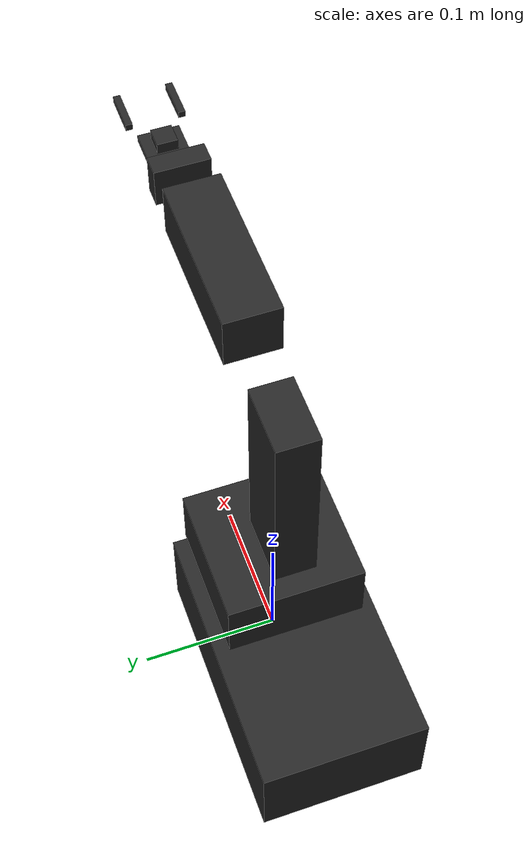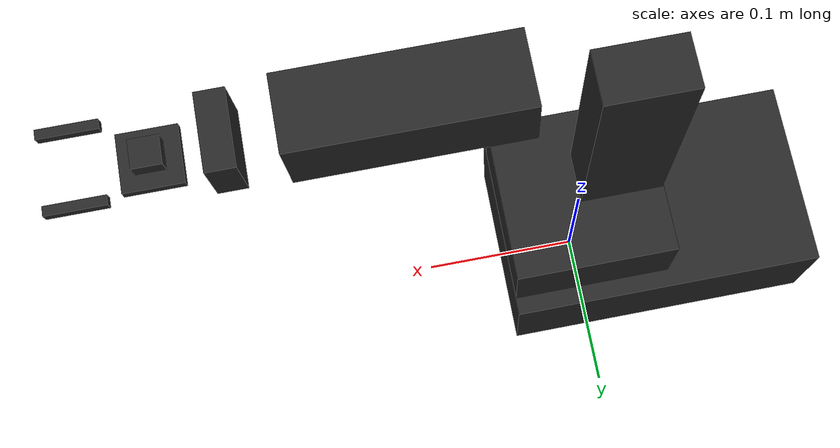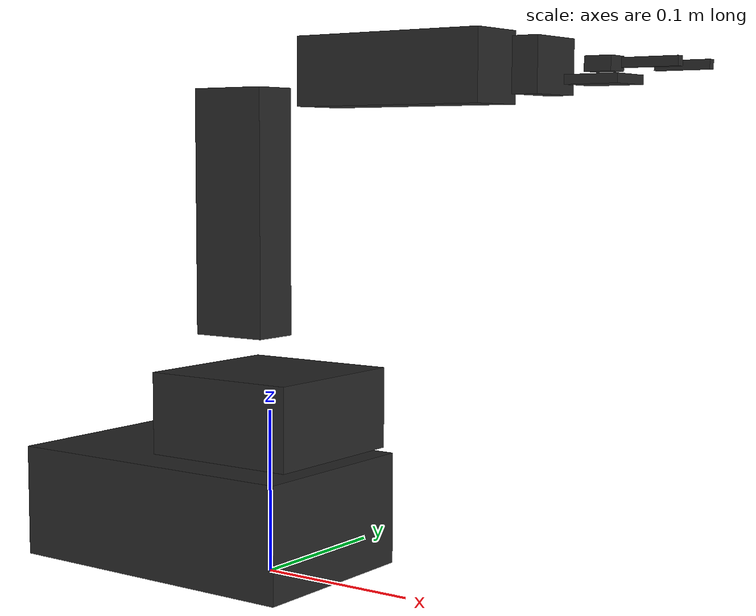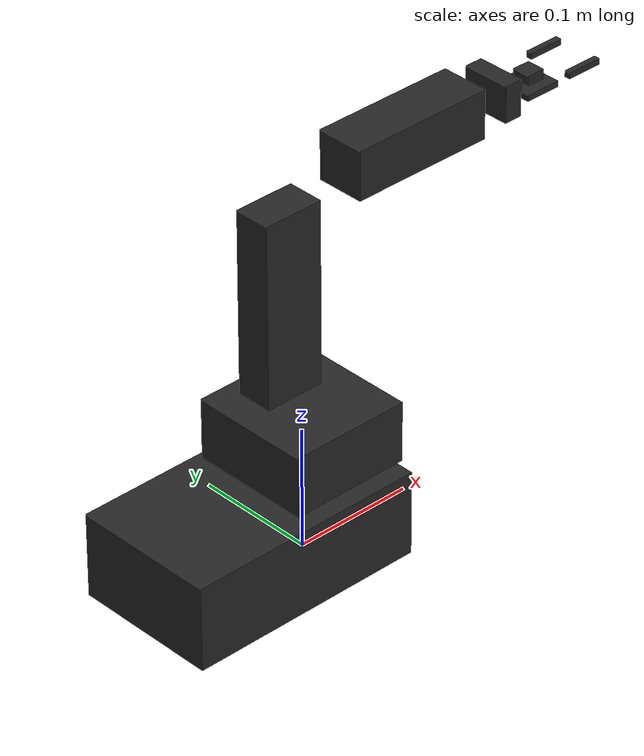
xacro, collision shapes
<?xml version="1.0"?>
<robot name="robot_arm" xmlns:xacro="http://www.ros.org/wiki/xacro">

  <!-- ===== MATERIALS ===== -->
  <material name="black"><color rgba="0.15 0.15 0.15 1"/></material>
  <material name="blue"><color rgba="0.2 0.5 0.9 1"/></material>
  <material name="red"><color rgba="0.9 0.2 0.2 1"/></material>
  <material name="green"><color rgba="0.2 0.9 0.3 1"/></material>

  <!-- Anchors base_link to the world origin so robot_state_publisher
       publishes a world -> base_link static TF frame for Foxglove/RViz. -->
  <link name="world"/>
  <joint name="world_to_base" type="fixed">
    <parent link="world"/>
    <child link="base_link"/>
    <origin xyz="0 0 0" rpy="0 0 0"/>
  </joint>

  <!-- BASE LINK: Alt_Kasa                                         -->
  <link name="base_link">
    <inertial>
      <mass value="0.5"/>
      <inertia ixx="0.001" ixy="0.0" ixz="0.0" iyy="0.001" iyz="0.0" izz="0.001"/>
    </inertial>
    <visual>
      <origin xyz="0 0 0" rpy="0 0 0"/>
      <geometry>
        <mesh filename="package://robot_arm_description/meshes/Alt_Kasa.stl" scale="0.001 0.001 0.001"/>
      </geometry>
      <material name="black"/>
    </visual>
    <collision>
      <origin xyz="-0.05 0 0.035" rpy="0 0 0"/>
      <geometry>
        <box size="0.20 0.12 0.07"/>
      </geometry>
    </collision>
  </link>

  <!-- ============================================================
   JOINT 1: WAIST (base rotation about Z)                      -->
  <joint name="joint1" type="revolute">
    <parent link="base_link"/>
    <child link="link1"/>
    <origin xyz="0 0 0.07" rpy="0 0 0"/>
    <axis xyz="0 0 1"/>
    <limit lower="-3.14" upper="3.14" effort="5.0" velocity="3.0"/>
  </joint>

  <!-- ROTATING BODY LINK: Alt_Govde                                -->
  <link name="link1">
    <inertial>
      <mass value="0.3"/>
      <inertia ixx="0.001" ixy="0.0" ixz="0.0" iyy="0.001" iyz="0.0" izz="0.001"/>
    </inertial>
    <visual>
      <origin xyz="0 0 0.01" rpy="0 0 3.14159"/>
      <geometry>
        <mesh filename="package://robot_arm_description/meshes/Alt_Govde.stl" scale="0.001 0.001 0.001"/>
      </geometry>
      <material name="black"/>
    </visual>
    <collision>
      <origin xyz="0 0 0.03" rpy="0 0 0"/>
      <geometry>
        <box size="0.1 0.1 0.05"/>
      </geometry>
    </collision>
  </link>

  <!-- JOINT 2: SHOULDER (pitch about Y)                           -->
  <joint name="joint2" type="revolute">
    <parent link="link1"/>
    <child link="link2"/>
    <origin xyz="-0.02 0 0.04" rpy="0 0 0"/>
    <axis xyz="0 1 0"/>
    <limit lower="-1.57" upper="1.57" effort="5.0" velocity="3.0"/>
  </joint>

  <!-- SHOULDER LINK: compact rotating mount                        -->
  <link name="link2">
    <inertial>
      <mass value="0.15"/>
      <inertia ixx="0.001" ixy="0.0" ixz="0.0" iyy="0.001" iyz="0.0" izz="0.001"/>
    </inertial>
    <visual>
      <origin xyz="0 0 0.1" rpy="0 0 0"/>
      <geometry>
        <mesh filename="package://robot_arm_description/meshes/Alt_Kol.stl" scale="0.001 0.001 0.001"/>
      </geometry>
      <material name="black"/>
    </visual>
    <collision>
      <origin xyz="0 0 0.11" rpy="0 0 0"/>
      <geometry>
        <box size="0.05 0.03 0.15"/>
      </geometry>
    </collision>
  </link>

  <!-- JOINT 3: ELBOW (pitch about Y)                              -->
  <joint name="joint3" type="revolute">
    <parent link="link2"/>
    <child link="link3"/>
    <origin xyz="0.047 0 0.1925" rpy="0 0 0"/>
    <axis xyz="0 1 0"/>
    <limit lower="-1.57" upper="1.57" effort="5.0" velocity="3.0"/>
  </joint>

  <!-- UPPER ARM LINK: On_Kol                                      -->
  <link name="link3">
    <inertial>
      <mass value="0.15"/>
      <inertia ixx="0.001" ixy="0.0" ixz="0.0" iyy="0.001" iyz="0.0" izz="0.001"/>
    </inertial>
    <visual>
      <origin xyz="0 0 0" rpy="0 3.14159 0"/>
      <geometry>
        <mesh filename="package://robot_arm_description/meshes/On_Kol.stl" scale="0.001 0.001 0.001"/>
      </geometry>
      <material name="black"/>
    </visual>
    <collision>
      <origin xyz="0.07 0 0" rpy="0 0 0"/>
      <geometry>
        <box size="0.12 0.04 0.04"/>
      </geometry>
    </collision>
  </link>

  <!-- JOINT 4: WRIST (pitch about Y)                              -->
  <joint name="joint4" type="revolute">
    <parent link="link3"/>
    <child link="link4"/>
    <origin xyz="0.141 0 -0.001" rpy="0 0 0"/>
    <axis xyz="0 1 0"/>
    <limit lower="-1.57" upper="1.57" effort="5.0" velocity="3.0"/>
  </joint>

  <!-- FOREARM LINK: Bilek                                         -->
  <link name="link4">
    <inertial>
      <mass value="0.1"/>
      <inertia ixx="0.001" ixy="0.0" ixz="0.0" iyy="0.001" iyz="0.0" izz="0.001"/>
    </inertial>
    <visual>
      <origin xyz="0.007 0 0" rpy="0 0 1.5708"/>
      <geometry>
        <mesh filename="package://robot_arm_description/meshes/Bilek.stl" scale="0.001 0.001 0.001"/>
      </geometry>
      <material name="black"/>
    </visual>
    <collision>
      <origin xyz="0.017 0 0" rpy="0 0 0"/>
      <geometry>
        <box size="0.015 0.04 0.03"/>
      </geometry>
    </collision>
  </link>

  <!-- JOINT 5: END EFFECTOR (fixed)                               -->
  <joint name="gripper_joint" type="fixed">
    <parent link="link4"/>
    <child link="gripper_link"/>
    <origin xyz="0.052 0 -0.008" rpy="0 0 0"/>
  </joint>

  <!-- GRIPPER BASE (palm)                                         -->
  <link name="gripper_link">
    <inertial>
      <mass value="0.03"/>
      <inertia ixx="0.001" ixy="0.0" ixz="0.0" iyy="0.001" iyz="0.0" izz="0.001"/>
    </inertial>
    <visual>
      <origin xyz="0 0 0" rpy="0 0 0"/>
      <geometry>
        <mesh filename="package://robot_arm_description/meshes/El_Ust.stl" scale="0.001 0.001 0.001"/>
      </geometry>
      <material name="black"/>
    </visual>
    <collision>
      <origin xyz="0 0 0" rpy="0 0 0"/>
      <geometry>
        <box size="0.03 0.03 0.005"/>
      </geometry>
    </collision>
  </link>

  <!-- RIGHT FINGER (prismatic, moves toward center)                -->
  <link name="finger_right_link">
    <inertial>
      <mass value="0.005"/>
      <inertia ixx="0.001" ixy="0.0" ixz="0.0" iyy="0.001" iyz="0.0" izz="0.001"/>
    </inertial>
    <visual>
      <origin xyz="0 -0.04 0.008" rpy="3.14159 0 0.785"/>
      <geometry>
        <mesh filename="package://robot_arm_description/meshes/Parmak_2_X_2.stl" scale="0.001 0.001 0.001"/>
      </geometry>
      <material name="black"/>
    </visual>
    <collision>
      <origin xyz="0.035 -0.019 0.007" rpy="0 0 0"/>
      <geometry>
        <box size="0.03 0.005 0.005"/>
      </geometry>
    </collision>
  </link>
  <joint name="finger_right_joint" type="prismatic">
    <parent link="gripper_link"/>
    <child link="finger_right_link"/>
    <origin xyz="0 0 0" rpy="0 0 0"/>
    <axis xyz="0 1 0"/>
    <limit lower="0" upper="0.015" effort="1.0" velocity="1.0"/>
  </joint>

  <!-- LEFT FINGER (prismatic, mirror of right)                     -->
  <link name="finger_left_link">
    <inertial>
      <mass value="0.005"/>
      <inertia ixx="0.001" ixy="0.0" ixz="0.0" iyy="0.001" iyz="0.0" izz="0.001"/>
    </inertial>
    <visual>
      <origin xyz="0 0.04 0.004" rpy="0 0 -0.785"/>
      <geometry>
        <mesh filename="package://robot_arm_description/meshes/Parmak_2_X_2.stl" scale="0.001 0.001 0.001"/>
      </geometry>
      <material name="black"/>
    </visual>
    <collision>
      <origin xyz="0.035 0.019 0.007" rpy="0 0 0"/>
      <geometry>
        <box size="0.03 0.005 0.005"/>
      </geometry>
    </collision>
  </link>
  <joint name="finger_left_joint" type="prismatic">
    <parent link="gripper_link"/>
    <child link="finger_left_link"/>
    <origin xyz="0 0 0" rpy="0 0 0"/>
    <axis xyz="0 -1 0"/>
    <limit lower="0" upper="0.015" effort="1.0" velocity="1.0"/>
  </joint>

  <link name="cap_link">
    <inertial>
      <mass value="0.005"/>
      <inertia ixx="0.001" ixy="0.0" ixz="0.0" iyy="0.001" iyz="0.0" izz="0.001"/>
    </inertial>
    <visual>
      <origin xyz="0 0 0.004" rpy="3.14159 0 0"/>
      <geometry>
        <mesh filename="package://robot_arm_description/meshes/El.stl" scale="0.001 0.001 0.001"/>
      </geometry>
      <material name="black"/>
    </visual>
    <collision>
      <origin xyz="0 0 0" rpy="0 0 0"/>
      <geometry>
        <box size="0.015 0.015 0.008"/>
      </geometry>
    </collision>
  </link>
  <joint name="cap_joint" type="fixed">
    <parent link="gripper_link"/>
    <child link="cap_link"/>
    <origin xyz="0 0 0.008" rpy="0 0 0"/>
  </joint>

  <!-- ============================================================
       wrist camera: sensor on link4, looks at gripper
       ============================================================ -->
  <gazebo reference="link4">
    <sensor name="wrist_camera" type="camera">
      <pose>0.03 0 0.05 0 0.4 0</pose>
      <always_on>true</always_on>
      <visualize>true</visualize>
      <update_rate>30</update_rate>
      <camera>
        <horizontal_fov>1.0472</horizontal_fov>
        <image>
          <width>640</width>
          <height>480</height>
          <format>R8G8B8</format>
        </image>
        <clip>
          <near>0.005</near>
          <far>0.5</far>
        </clip>
      </camera>
    </sensor>
  </gazebo>

  <xacro:include filename="$(find robot_arm_description)/urdf/robot_arm.gazebo.xacro"/>

</robot>
